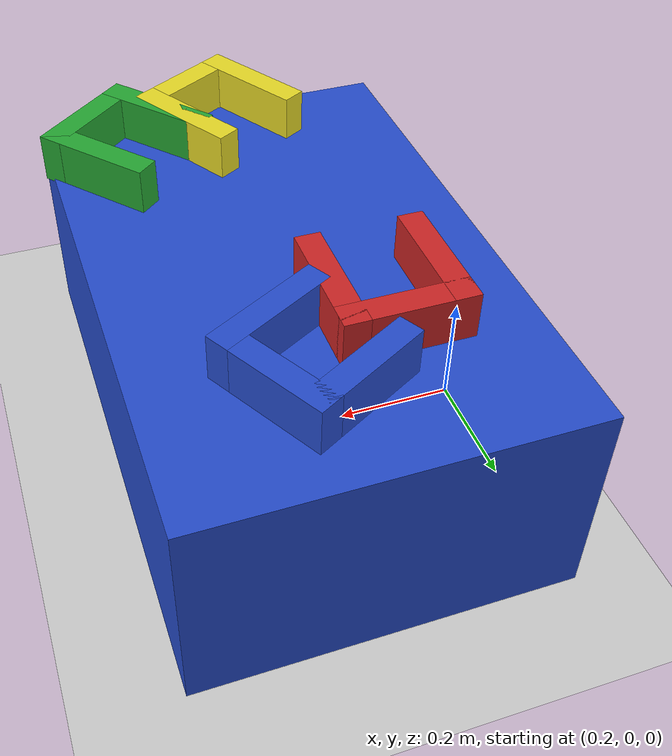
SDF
<?xml version="1.0" ?>
<sdf version="1.6">
  <world name="panda_reaching">
    <gui>
    <camera name="user_camera">
      <pose>1.9938 0.1248 1.905 0 0.8058 -3.1229</pose>
    </camera>
  </gui>
    <!--A global light source-->
    <include>
      <uri>model://sun</uri>
    </include>
    <!--A ground plane-->
    <include>
      <uri>model://ground_plane</uri>
    </include>
    <!--A Table-->
    <include>
      <uri>model://table</uri>
      <name>table</name>
      <pose>0.5 0.0 0.0 0 0 0</pose>
      <static>1</static>
    </include>
    <!--Start frame-->
    <include>
      <uri>model://green_frame</uri>
      <name>startFrame</name>
      <pose>0.67 -0.32 0.40 0 0 -0.8708</pose>
      <static>1</static>
    </include>
    <!--End frame-->
    <include>
      <uri>model://red_frame</uri>
      <name>endFrame</name>
      <pose>0.41 0.15 0.40 0 0 1.5708</pose> <!-- 1.5708=pi/2 -->
      <static>1</static>
    </include>
    <!-- NEW additional frame (blue) -->
    <include>
      <uri>model://blue_frame</uri>
      <name>midFrame</name>
      <pose>0.55 0.25 0.40 0 0 0.5</pose>
      <static>1</static>
    </include>
    <!-- NEW additional frame (yellow) -->
    <include>
      <uri>model://yellow_frame</uri>
      <name>yellowFrame</name>
      <pose>0.5 -0.37 0.40 0 0 -1.0472</pose> <!-- -pi/3 ≈ -1.0472 rad -->
      <static>1</static>
    </include>
  </world>
</sdf>

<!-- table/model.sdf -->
<sdf version='1.6'>
  <model name='table'>
    <link name='link'>
      <pose>0 0 0.2099115 0 -0 0</pose>
      <inertial>
        <pose>0 0 0 0 -0 0</pose>
        <mass>10</mass>
        <inertia>
          <ixx>0.166667</ixx>
          <ixy>0</ixy>
          <ixz>0</ixz>
          <iyy>0.166667</iyy>
          <iyz>0</iyz>
          <izz>0.166667</izz>
        </inertia>
      </inertial>
      <self_collide>0</self_collide>
      <enable_wind>0</enable_wind>
      <kinematic>0</kinematic>
      <visual name='visual'>
        <pose>0 0 0 0 -0 0</pose>
        <geometry>
          <box>
            <size>0.6 0.9 0.35</size>
          </box>
        </geometry>
        <material>
          <script>
            <name>Gazebo/Blue</name>
            <uri>file://media/materials/scripts/gazebo.material</uri>
          </script>
          <shader type='pixel'/>
        </material>
        <pose>0 0 0 0 -0 0</pose>
        <transparency>0</transparency>
        <cast_shadows>1</cast_shadows>
      </visual>
      <collision name='collision'>
        <laser_retro>0</laser_retro>
        <max_contacts>10</max_contacts>
        <pose>0 0 0 0 -0 0</pose>
        <geometry>
          <box>
            <size>0.6 0.9 0.35</size>
          </box>
        </geometry>
        <surface>
          <friction>
            <ode>
              <mu>1</mu>
              <mu2>1</mu2>
              <fdir1>0 0 0</fdir1>
              <slip1>0</slip1>
              <slip2>0</slip2>
            </ode>
            <torsional>
              <coefficient>1</coefficient>
              <patch_radius>0</patch_radius>
              <surface_radius>0</surface_radius>
              <use_patch_radius>1</use_patch_radius>
              <ode>
                <slip>0</slip>
              </ode>
            </torsional>
          </friction>
          <bounce>
            <restitution_coefficient>0</restitution_coefficient>
            <threshold>1e+06</threshold>
          </bounce>
          <contact>
            <collide_without_contact>0</collide_without_contact>
            <collide_without_contact_bitmask>1</collide_without_contact_bitmask>
            <collide_bitmask>1</collide_bitmask>
            <ode>
              <soft_cfm>0</soft_cfm>
              <soft_erp>0.2</soft_erp>
              <kp>1e+13</kp>
              <kd>1</kd>
              <max_vel>0.01</max_vel>
              <min_depth>0</min_depth>
            </ode>
            <bullet>
              <split_impulse>1</split_impulse>
              <split_impulse_penetration_threshold>-0.01</split_impulse_penetration_threshold>
              <soft_cfm>0</soft_cfm>
              <soft_erp>0.2</soft_erp>
              <kp>1e+13</kp>
              <kd>1</kd>
            </bullet>
          </contact>
        </surface>
      </collision>
    </link>
    <static>1</static>
    <allow_auto_disable>1</allow_auto_disable>
  </model>
</sdf>

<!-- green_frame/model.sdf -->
<sdf version='1.6'>
  <model name='green_frame'>
    <pose>0 0 0 0 0 0</pose>

    <link name='Wall_0'>
      <collision name='Wall_0_Collision'>
        <geometry>
          <box>
            <size>0.2 0.04 0.08</size>
          </box>
        </geometry>
        <pose>0 0 0.02 0 -0 0</pose>
      </collision>
      <visual name='Wall_0_Visual'>
        <pose>0 0 0.02 0 -0 0</pose>
        <geometry>
          <box>
            <size>0.2 0.04 0.08</size>
          </box>
        </geometry>
        <material>
          <script>
            <uri>file://media/materials/scripts/gazebo.material</uri>
            <name>Gazebo/GreenGlow</name>
          </script>
          <ambient>1 1 1 1</ambient>
        </material>
        <meta>
          <layer>0</layer>
        </meta>
      </visual>
      <pose> 0 -0.08 0 0 -0 0</pose>
    </link>

    <link name='Wall_1'>
      <collision name='Wall_1_Collision'>
        <geometry>
          <box>
            <size>0.2 0.04 0.08</size>
          </box>
        </geometry>
        <pose>0 0 0.02 0 -0 0</pose>
      </collision>
      <visual name='Wall_1_Visual'>
        <pose>0 0 0.02 0 -0 0</pose>
        <geometry>
          <box>
            <size>0.2 0.04 0.08</size>
          </box>
        </geometry>
        <material>
          <script>
            <uri>file://media/materials/scripts/gazebo.material</uri>
            <name>Gazebo/GreenGlow</name>
          </script>
          <ambient>1 1 1 1</ambient>
        </material>
        <meta>
          <layer>0</layer>
        </meta>
      </visual>
      <pose>0.08 0 0 0 -0 -1.5708</pose> <!-- -1.5708=-pi/2 -->
    </link>

    <link name='Wall_2'>
      <collision name='Wall_2_Collision'>
        <geometry>
          <box>
            <size>0.2 0.04 0.08</size>
          </box>
        </geometry>
        <pose>0 0 0.02 0 -0 0</pose>
      </collision>
      <visual name='Wall_2_Visual'>
        <pose>0 0 0.02 0 -0 0</pose>
        <geometry>
          <box>
            <size>0.2 0.04 0.08</size>
          </box>
        </geometry>
        <material>
          <script>
            <uri>file://media/materials/scripts/gazebo.material</uri>
            <name>Gazebo/GreenGlow</name>
          </script>
          <ambient>1 1 1 1</ambient>
        </material>
        <meta>
          <layer>0</layer>
        </meta>
      </visual>
      <pose>0 0.08 0 0 -0 3.14159</pose>
    </link>

    <static>1</static>
  </model>
</sdf>

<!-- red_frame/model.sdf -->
<sdf version='1.6'>
  <model name='red_frame'>
    <pose>0 0 0 0 0 0</pose>

    <link name='Wall_0'>
      <collision name='Wall_0_Collision'>
        <geometry>
          <box>
            <size>0.2 0.04 0.08</size>
          </box>
        </geometry>
        <pose>0 0 0.02 0 -0 0</pose>
      </collision>
      <visual name='Wall_0_Visual'>
        <pose>0 0 0.02 0 -0 0</pose>
        <geometry>
          <box>
            <size>0.2 0.04 0.08</size>
          </box>
        </geometry>
        <material>
          <script>
            <uri>file://media/materials/scripts/gazebo.material</uri>
            <name>Gazebo/RedGlow</name>
          </script>
          <ambient>1 1 1 1</ambient>
        </material>
        <meta>
          <layer>0</layer>
        </meta>
      </visual>
      <pose> 0 -0.08 0 0 -0 0</pose>
    </link>

    <link name='Wall_1'>
      <collision name='Wall_1_Collision'>
        <geometry>
          <box>
            <size>0.2 0.04 0.08</size>
          </box>
        </geometry>
        <pose>0 0 0.02 0 -0 0</pose>
      </collision>
      <visual name='Wall_1_Visual'>
        <pose>0 0 0.02 0 -0 0</pose>
        <geometry>
          <box>
            <size>0.2 0.04 0.08</size>
          </box>
        </geometry>
        <material>
          <script>
            <uri>file://media/materials/scripts/gazebo.material</uri>
            <name>Gazebo/RedGlow</name>
          </script>
          <ambient>1 1 1 1</ambient>
        </material>
        <meta>
          <layer>0</layer>
        </meta>
      </visual>
      <pose>0.08 0 0 0 -0 -1.5708</pose> <!-- -1.5708=-pi/2 -->
    </link>

    <link name='Wall_2'>
      <collision name='Wall_2_Collision'>
        <geometry>
          <box>
            <size>0.2 0.04 0.08</size>
          </box>
        </geometry>
        <pose>0 0 0.02 0 -0 0</pose>
      </collision>
      <visual name='Wall_2_Visual'>
        <pose>0 0 0.02 0 -0 0</pose>
        <geometry>
          <box>
            <size>0.2 0.04 0.08</size>
          </box>
        </geometry>
        <material>
          <script>
            <uri>file://media/materials/scripts/gazebo.material</uri>
            <name>Gazebo/RedGlow</name>
          </script>
          <ambient>1 1 1 1</ambient>
        </material>
        <meta>
          <layer>0</layer>
        </meta>
      </visual>
      <pose>0 0.08 0 0 -0 3.14159</pose>
    </link>

    <static>1</static>
  </model>
</sdf>

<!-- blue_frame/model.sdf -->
<sdf version='1.6'>
  <model name='blue_frame'>
    <pose>0 0 0 0 0 0</pose>

    <!-- Wall 0 -->
    <link name='Wall_0'>
      <collision name='Wall_0_Collision'>
        <geometry>
          <box>
            <size>0.2 0.04 0.08</size>
          </box>
        </geometry>
        <pose>0 0 0.02 0 0 0</pose>
      </collision>

      <visual name='Wall_0_Visual'>
        <pose>0 0 0.02 0 0 0</pose>
        <geometry>
          <box>
            <size>0.2 0.04 0.08</size>
          </box>
        </geometry>
        <material>
          <script>
            <uri>file://media/materials/scripts/gazebo.material</uri>
            <name>Gazebo/BlueGlow</name>
          </script>
          <ambient>1 1 1 1</ambient>
        </material>
      </visual>

      <pose>0 -0.08 0 0 0 0</pose>
    </link>

    <!-- Wall 1 -->
    <link name='Wall_1'>
      <collision name='Wall_1_Collision'>
        <geometry>
          <box>
            <size>0.2 0.04 0.08</size>
          </box>
        </geometry>
        <pose>0 0 0.02 0 0 0</pose>
      </collision>

      <visual name='Wall_1_Visual'>
        <pose>0 0 0.02 0 0 0</pose>
        <geometry>
          <box>
            <size>0.2 0.04 0.08</size>
          </box>
        </geometry>
        <material>
          <script>
            <uri>file://media/materials/scripts/gazebo.material</uri>
            <name>Gazebo/BlueGlow</name>
          </script>
          <ambient>1 1 1 1</ambient>
        </material>
      </visual>

      <pose>0.08 0 0 0 0 -1.5708</pose>
    </link>

    <!-- Wall 2 -->
    <link name='Wall_2'>
      <collision name='Wall_2_Collision'>
        <geometry>
          <box>
            <size>0.2 0.04 0.08</size>
          </box>
        </geometry>
        <pose>0 0 0.02 0 0 0</pose>
      </collision>

      <visual name='Wall_2_Visual'>
        <pose>0 0 0.02 0 0 0</pose>
        <geometry>
          <box>
            <size>0.2 0.04 0.08</size>
          </box>
        </geometry>
        <material>
          <script>
            <uri>file://media/materials/scripts/gazebo.material</uri>
            <name>Gazebo/BlueGlow</name>
          </script>
          <ambient>1 1 1 1</ambient>
        </material>
      </visual>

      <pose>0 0.08 0 0 0 3.14159</pose>
    </link>

  </model>
</sdf>

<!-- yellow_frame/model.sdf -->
<sdf version='1.6'>
  <model name='yellow_frame'>
    <pose>0.5 -0.37 0.40 0 0 -1.0472</pose> <!-- -pi/3 -->

    <!-- Wall 0 -->
    <link name='Wall_0'>
      <collision name='Wall_0_Collision'>
        <geometry>
          <box>
            <size>0.2 0.04 0.08</size>
          </box>
        </geometry>
        <pose>0 0 0.02 0 0 0</pose>
      </collision>

      <visual name='Wall_0_Visual'>
        <pose>0 0 0.02 0 0 0</pose>
        <geometry>
          <box>
            <size>0.2 0.04 0.08</size>
          </box>
        </geometry>
        <material>
          <script>
            <uri>file://media/materials/scripts/gazebo.material</uri>
            <name>Gazebo/YellowGlow</name>
          </script>
          <ambient>1 1 0 1</ambient>
        </material>
      </visual>

      <pose>0 -0.08 0 0 0 0</pose>
    </link>

    <!-- Wall 1 -->
    <link name='Wall_1'>
      <collision name='Wall_1_Collision'>
        <geometry>
          <box>
            <size>0.2 0.04 0.08</size>
          </box>
        </geometry>
        <pose>0 0 0.02 0 0 0</pose>
      </collision>

      <visual name='Wall_1_Visual'>
        <pose>0 0 0.02 0 0 0</pose>
        <geometry>
          <box>
            <size>0.2 0.04 0.08</size>
          </box>
        </geometry>
        <material>
          <script>
            <uri>file://media/materials/scripts/gazebo.material</uri>
            <name>Gazebo/YellowGlow</name>
          </script>
          <ambient>1 1 0 1</ambient>
        </material>
      </visual>

      <pose>0.08 0 0 0 0 -1.5708</pose>
    </link>

    <!-- Wall 2 -->
    <link name='Wall_2'>
      <collision name='Wall_2_Collision'>
        <geometry>
          <box>
            <size>0.2 0.04 0.08</size>
          </box>
        </geometry>
        <pose>0 0 0.02 0 0 0</pose>
      </collision>

      <visual name='Wall_2_Visual'>
        <pose>0 0 0.02 0 0 0</pose>
        <geometry>
          <box>
            <size>0.2 0.04 0.08</size>
          </box>
        </geometry>
        <material>
          <script>
            <uri>file://media/materials/scripts/gazebo.material</uri>
            <name>Gazebo/YellowGlow</name>
          </script>
          <ambient>1 1 0 1</ambient>
        </material>
      </visual>

      <pose>0 0.08 0 0 0 3.14159</pose>
    </link>

  </model>
</sdf>
